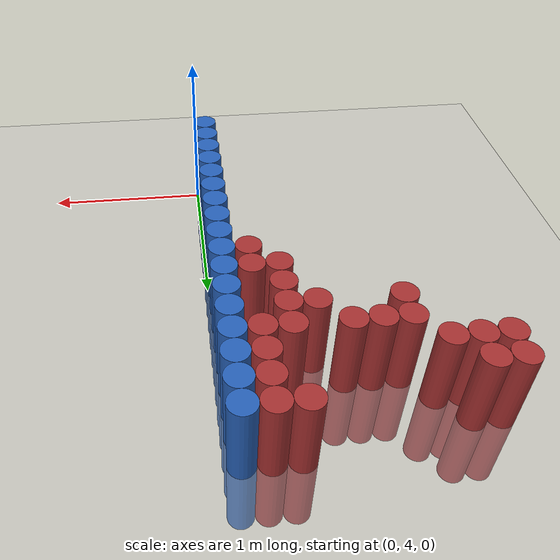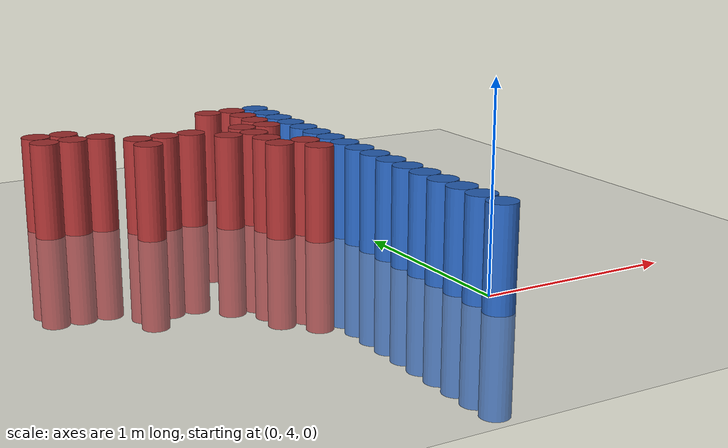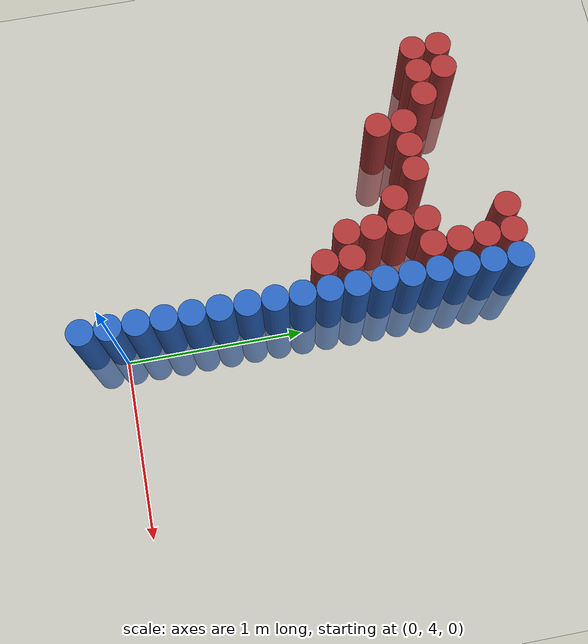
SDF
<sdf version="1.6">
 <world name="default">
  <model name="ground_plane">
   <static>1</static>
   <link name="link">
    <collision name="collision">
     <geometry><plane><normal>0 0 1</normal><size>100 100</size></plane></geometry>
     <surface><friction><ode><mu>100</mu><mu2>50</mu2></ode></friction></surface>
    </collision>
    <visual name="visual">
     <cast_shadows>0</cast_shadows>
     <geometry><plane><normal>0 0 1</normal><size>100 100</size></plane></geometry>
     <material>
      <script><uri>file://media/materials/scripts/gazebo.material</uri><name>Gazebo/Grey</name></script>
     </material>
    </visual>
   </link>
  </model>
  <model name="unit_cylinder_78">
   <static>1</static>
   <pose>-0.075000 3.825000 0.000000 0.000000 0.000000 0.000000</pose>
   <link name="link">
    <inertial>
     <mass>1</mass>
     <inertia><ixx>0.145833</ixx><ixy>0</ixy><ixz>0</ixz><iyy>0.145833</iyy><iyz>0</iyz><izz>0.125</izz></inertia>
    </inertial>
    <collision name="collision">
     <geometry><cylinder><radius>0.075000</radius><length>1</length></cylinder></geometry>
    </collision>
    <visual name="visual">
     <geometry><cylinder><radius>0.075000</radius><length>1</length></cylinder></geometry>
     <material>
      <ambient>0.152000 0.379000 0.720000 1</ambient>
      <diffuse>0.152000 0.379000 0.720000 1</diffuse>
     </material>
     <material>
      <script><name>Gazebo/Grey</name><uri>file://media/materials/scripts/gazebo.material</uri></script>
     </material>
    </visual>
    <sensor name="sensor_contact" type="contact"><contact><collision>collision</collision></contact></sensor>
   </link>
   <plugin filename="gz-sim-touchplugin-system" name="gz::sim::systems::TouchPlugin">
    <target>robot</target>
    <namespace>robot</namespace>
    <time>0.001</time>
    <enabled>true</enabled>
   </plugin>
  </model>
  <model name="unit_cylinder_80">
   <static>1</static>
   <pose>-0.075000 3.975000 0.000000 0.000000 0.000000 0.000000</pose>
   <link name="link">
    <inertial>
     <mass>1</mass>
     <inertia><ixx>0.145833</ixx><ixy>0</ixy><ixz>0</ixz><iyy>0.145833</iyy><iyz>0</iyz><izz>0.125</izz></inertia>
    </inertial>
    <collision name="collision">
     <geometry><cylinder><radius>0.075000</radius><length>1</length></cylinder></geometry>
    </collision>
    <visual name="visual">
     <geometry><cylinder><radius>0.075000</radius><length>1</length></cylinder></geometry>
     <material>
      <ambient>0.152000 0.379000 0.720000 1</ambient>
      <diffuse>0.152000 0.379000 0.720000 1</diffuse>
     </material>
     <material>
      <script><name>Gazebo/Grey</name><uri>file://media/materials/scripts/gazebo.material</uri></script>
     </material>
    </visual>
    <sensor name="sensor_contact" type="contact"><contact><collision>collision</collision></contact></sensor>
   </link>
   <plugin filename="gz-sim-touchplugin-system" name="gz::sim::systems::TouchPlugin">
    <target>robot</target>
    <namespace>robot</namespace>
    <time>0.001</time>
    <enabled>true</enabled>
   </plugin>
  </model>
  <model name="unit_cylinder_82">
   <static>1</static>
   <pose>-0.075000 4.125000 0.000000 0.000000 0.000000 0.000000</pose>
   <link name="link">
    <inertial>
     <mass>1</mass>
     <inertia><ixx>0.145833</ixx><ixy>0</ixy><ixz>0</ixz><iyy>0.145833</iyy><iyz>0</iyz><izz>0.125</izz></inertia>
    </inertial>
    <collision name="collision">
     <geometry><cylinder><radius>0.075000</radius><length>1</length></cylinder></geometry>
    </collision>
    <visual name="visual">
     <geometry><cylinder><radius>0.075000</radius><length>1</length></cylinder></geometry>
     <material>
      <ambient>0.152000 0.379000 0.720000 1</ambient>
      <diffuse>0.152000 0.379000 0.720000 1</diffuse>
     </material>
     <material>
      <script><name>Gazebo/Grey</name><uri>file://media/materials/scripts/gazebo.material</uri></script>
     </material>
    </visual>
    <sensor name="sensor_contact" type="contact"><contact><collision>collision</collision></contact></sensor>
   </link>
   <plugin filename="gz-sim-touchplugin-system" name="gz::sim::systems::TouchPlugin">
    <target>robot</target>
    <namespace>robot</namespace>
    <time>0.001</time>
    <enabled>true</enabled>
   </plugin>
  </model>
  <model name="unit_cylinder_84">
   <static>1</static>
   <pose>-0.075000 4.275000 0.000000 0.000000 0.000000 0.000000</pose>
   <link name="link">
    <inertial>
     <mass>1</mass>
     <inertia><ixx>0.145833</ixx><ixy>0</ixy><ixz>0</ixz><iyy>0.145833</iyy><iyz>0</iyz><izz>0.125</izz></inertia>
    </inertial>
    <collision name="collision">
     <geometry><cylinder><radius>0.075000</radius><length>1</length></cylinder></geometry>
    </collision>
    <visual name="visual">
     <geometry><cylinder><radius>0.075000</radius><length>1</length></cylinder></geometry>
     <material>
      <ambient>0.152000 0.379000 0.720000 1</ambient>
      <diffuse>0.152000 0.379000 0.720000 1</diffuse>
     </material>
     <material>
      <script><name>Gazebo/Grey</name><uri>file://media/materials/scripts/gazebo.material</uri></script>
     </material>
    </visual>
    <sensor name="sensor_contact" type="contact"><contact><collision>collision</collision></contact></sensor>
   </link>
   <plugin filename="gz-sim-touchplugin-system" name="gz::sim::systems::TouchPlugin">
    <target>robot</target>
    <namespace>robot</namespace>
    <time>0.001</time>
    <enabled>true</enabled>
   </plugin>
  </model>
  <model name="unit_cylinder_86">
   <static>1</static>
   <pose>-0.075000 4.425000 0.000000 0.000000 0.000000 0.000000</pose>
   <link name="link">
    <inertial>
     <mass>1</mass>
     <inertia><ixx>0.145833</ixx><ixy>0</ixy><ixz>0</ixz><iyy>0.145833</iyy><iyz>0</iyz><izz>0.125</izz></inertia>
    </inertial>
    <collision name="collision">
     <geometry><cylinder><radius>0.075000</radius><length>1</length></cylinder></geometry>
    </collision>
    <visual name="visual">
     <geometry><cylinder><radius>0.075000</radius><length>1</length></cylinder></geometry>
     <material>
      <ambient>0.152000 0.379000 0.720000 1</ambient>
      <diffuse>0.152000 0.379000 0.720000 1</diffuse>
     </material>
     <material>
      <script><name>Gazebo/Grey</name><uri>file://media/materials/scripts/gazebo.material</uri></script>
     </material>
    </visual>
    <sensor name="sensor_contact" type="contact"><contact><collision>collision</collision></contact></sensor>
   </link>
   <plugin filename="gz-sim-touchplugin-system" name="gz::sim::systems::TouchPlugin">
    <target>robot</target>
    <namespace>robot</namespace>
    <time>0.001</time>
    <enabled>true</enabled>
   </plugin>
  </model>
  <model name="unit_cylinder_88">
   <static>1</static>
   <pose>-0.075000 4.575000 0.000000 0.000000 0.000000 0.000000</pose>
   <link name="link">
    <inertial>
     <mass>1</mass>
     <inertia><ixx>0.145833</ixx><ixy>0</ixy><ixz>0</ixz><iyy>0.145833</iyy><iyz>0</iyz><izz>0.125</izz></inertia>
    </inertial>
    <collision name="collision">
     <geometry><cylinder><radius>0.075000</radius><length>1</length></cylinder></geometry>
    </collision>
    <visual name="visual">
     <geometry><cylinder><radius>0.075000</radius><length>1</length></cylinder></geometry>
     <material>
      <ambient>0.152000 0.379000 0.720000 1</ambient>
      <diffuse>0.152000 0.379000 0.720000 1</diffuse>
     </material>
     <material>
      <script><name>Gazebo/Grey</name><uri>file://media/materials/scripts/gazebo.material</uri></script>
     </material>
    </visual>
    <sensor name="sensor_contact" type="contact"><contact><collision>collision</collision></contact></sensor>
   </link>
   <plugin filename="gz-sim-touchplugin-system" name="gz::sim::systems::TouchPlugin">
    <target>robot</target>
    <namespace>robot</namespace>
    <time>0.001</time>
    <enabled>true</enabled>
   </plugin>
  </model>
  <model name="unit_cylinder_90">
   <static>1</static>
   <pose>-0.075000 4.725000 0.000000 0.000000 0.000000 0.000000</pose>
   <link name="link">
    <inertial>
     <mass>1</mass>
     <inertia><ixx>0.145833</ixx><ixy>0</ixy><ixz>0</ixz><iyy>0.145833</iyy><iyz>0</iyz><izz>0.125</izz></inertia>
    </inertial>
    <collision name="collision">
     <geometry><cylinder><radius>0.075000</radius><length>1</length></cylinder></geometry>
    </collision>
    <visual name="visual">
     <geometry><cylinder><radius>0.075000</radius><length>1</length></cylinder></geometry>
     <material>
      <ambient>0.152000 0.379000 0.720000 1</ambient>
      <diffuse>0.152000 0.379000 0.720000 1</diffuse>
     </material>
     <material>
      <script><name>Gazebo/Grey</name><uri>file://media/materials/scripts/gazebo.material</uri></script>
     </material>
    </visual>
    <sensor name="sensor_contact" type="contact"><contact><collision>collision</collision></contact></sensor>
   </link>
   <plugin filename="gz-sim-touchplugin-system" name="gz::sim::systems::TouchPlugin">
    <target>robot</target>
    <namespace>robot</namespace>
    <time>0.001</time>
    <enabled>true</enabled>
   </plugin>
  </model>
  <model name="unit_cylinder_92">
   <static>1</static>
   <pose>-0.075000 4.875000 0.000000 0.000000 0.000000 0.000000</pose>
   <link name="link">
    <inertial>
     <mass>1</mass>
     <inertia><ixx>0.145833</ixx><ixy>0</ixy><ixz>0</ixz><iyy>0.145833</iyy><iyz>0</iyz><izz>0.125</izz></inertia>
    </inertial>
    <collision name="collision">
     <geometry><cylinder><radius>0.075000</radius><length>1</length></cylinder></geometry>
    </collision>
    <visual name="visual">
     <geometry><cylinder><radius>0.075000</radius><length>1</length></cylinder></geometry>
     <material>
      <ambient>0.152000 0.379000 0.720000 1</ambient>
      <diffuse>0.152000 0.379000 0.720000 1</diffuse>
     </material>
     <material>
      <script><name>Gazebo/Grey</name><uri>file://media/materials/scripts/gazebo.material</uri></script>
     </material>
    </visual>
    <sensor name="sensor_contact" type="contact"><contact><collision>collision</collision></contact></sensor>
   </link>
   <plugin filename="gz-sim-touchplugin-system" name="gz::sim::systems::TouchPlugin">
    <target>robot</target>
    <namespace>robot</namespace>
    <time>0.001</time>
    <enabled>true</enabled>
   </plugin>
  </model>
  <model name="unit_cylinder_94">
   <static>1</static>
   <pose>-0.075000 5.025000 0.000000 0.000000 0.000000 0.000000</pose>
   <link name="link">
    <inertial>
     <mass>1</mass>
     <inertia><ixx>0.145833</ixx><ixy>0</ixy><ixz>0</ixz><iyy>0.145833</iyy><iyz>0</iyz><izz>0.125</izz></inertia>
    </inertial>
    <collision name="collision">
     <geometry><cylinder><radius>0.075000</radius><length>1</length></cylinder></geometry>
    </collision>
    <visual name="visual">
     <geometry><cylinder><radius>0.075000</radius><length>1</length></cylinder></geometry>
     <material>
      <ambient>0.152000 0.379000 0.720000 1</ambient>
      <diffuse>0.152000 0.379000 0.720000 1</diffuse>
     </material>
     <material>
      <script><name>Gazebo/Grey</name><uri>file://media/materials/scripts/gazebo.material</uri></script>
     </material>
    </visual>
    <sensor name="sensor_contact" type="contact"><contact><collision>collision</collision></contact></sensor>
   </link>
   <plugin filename="gz-sim-touchplugin-system" name="gz::sim::systems::TouchPlugin">
    <target>robot</target>
    <namespace>robot</namespace>
    <time>0.001</time>
    <enabled>true</enabled>
   </plugin>
  </model>
  <model name="unit_cylinder_216">
   <static>1</static>
   <pose>-1.425000 5.925000 0.000000 0.000000 0.000000 0.000000</pose>
   <link name="link">
    <inertial>
     <mass>1</mass>
     <inertia><ixx>0.145833</ixx><ixy>0</ixy><ixz>0</ixz><iyy>0.145833</iyy><iyz>0</iyz><izz>0.125</izz></inertia>
    </inertial>
    <collision name="collision">
     <geometry><cylinder><radius>0.075000</radius><length>1</length></cylinder></geometry>
    </collision>
    <visual name="visual">
     <geometry><cylinder><radius>0.075000</radius><length>1</length></cylinder></geometry>
     <material>
      <ambient>0.648000 0.192000 0.192000 1</ambient>
      <diffuse>0.648000 0.192000 0.192000 1</diffuse>
     </material>
     <material>
      <script><name>Gazebo/Grey</name><uri>file://media/materials/scripts/gazebo.material</uri></script>
     </material>
    </visual>
    <sensor name="sensor_contact" type="contact"><contact><collision>collision</collision></contact></sensor>
   </link>
   <plugin filename="gz-sim-touchplugin-system" name="gz::sim::systems::TouchPlugin">
    <target>robot</target>
    <namespace>robot</namespace>
    <time>0.001</time>
    <enabled>true</enabled>
   </plugin>
  </model>
  <model name="unit_cylinder_217">
   <static>1</static>
   <pose>-1.425000 6.075000 0.000000 0.000000 0.000000 0.000000</pose>
   <link name="link">
    <inertial>
     <mass>1</mass>
     <inertia><ixx>0.145833</ixx><ixy>0</ixy><ixz>0</ixz><iyy>0.145833</iyy><iyz>0</iyz><izz>0.125</izz></inertia>
    </inertial>
    <collision name="collision">
     <geometry><cylinder><radius>0.075000</radius><length>1</length></cylinder></geometry>
    </collision>
    <visual name="visual">
     <geometry><cylinder><radius>0.075000</radius><length>1</length></cylinder></geometry>
     <material>
      <ambient>0.648000 0.192000 0.192000 1</ambient>
      <diffuse>0.648000 0.192000 0.192000 1</diffuse>
     </material>
     <material>
      <script><name>Gazebo/Grey</name><uri>file://media/materials/scripts/gazebo.material</uri></script>
     </material>
    </visual>
    <sensor name="sensor_contact" type="contact"><contact><collision>collision</collision></contact></sensor>
   </link>
   <plugin filename="gz-sim-touchplugin-system" name="gz::sim::systems::TouchPlugin">
    <target>robot</target>
    <namespace>robot</namespace>
    <time>0.001</time>
    <enabled>true</enabled>
   </plugin>
  </model>
  <model name="unit_cylinder_226">
   <static>1</static>
   <pose>-1.275000 5.925000 0.000000 0.000000 0.000000 0.000000</pose>
   <link name="link">
    <inertial>
     <mass>1</mass>
     <inertia><ixx>0.145833</ixx><ixy>0</ixy><ixz>0</ixz><iyy>0.145833</iyy><iyz>0</iyz><izz>0.125</izz></inertia>
    </inertial>
    <collision name="collision">
     <geometry><cylinder><radius>0.075000</radius><length>1</length></cylinder></geometry>
    </collision>
    <visual name="visual">
     <geometry><cylinder><radius>0.075000</radius><length>1</length></cylinder></geometry>
     <material>
      <ambient>0.648000 0.192000 0.192000 1</ambient>
      <diffuse>0.648000 0.192000 0.192000 1</diffuse>
     </material>
     <material>
      <script><name>Gazebo/Grey</name><uri>file://media/materials/scripts/gazebo.material</uri></script>
     </material>
    </visual>
    <sensor name="sensor_contact" type="contact"><contact><collision>collision</collision></contact></sensor>
   </link>
   <plugin filename="gz-sim-touchplugin-system" name="gz::sim::systems::TouchPlugin">
    <target>robot</target>
    <namespace>robot</namespace>
    <time>0.001</time>
    <enabled>true</enabled>
   </plugin>
  </model>
  <model name="unit_cylinder_227">
   <static>1</static>
   <pose>-1.275000 6.075000 0.000000 0.000000 0.000000 0.000000</pose>
   <link name="link">
    <inertial>
     <mass>1</mass>
     <inertia><ixx>0.145833</ixx><ixy>0</ixy><ixz>0</ixz><iyy>0.145833</iyy><iyz>0</iyz><izz>0.125</izz></inertia>
    </inertial>
    <collision name="collision">
     <geometry><cylinder><radius>0.075000</radius><length>1</length></cylinder></geometry>
    </collision>
    <visual name="visual">
     <geometry><cylinder><radius>0.075000</radius><length>1</length></cylinder></geometry>
     <material>
      <ambient>0.648000 0.192000 0.192000 1</ambient>
      <diffuse>0.648000 0.192000 0.192000 1</diffuse>
     </material>
     <material>
      <script><name>Gazebo/Grey</name><uri>file://media/materials/scripts/gazebo.material</uri></script>
     </material>
    </visual>
    <sensor name="sensor_contact" type="contact"><contact><collision>collision</collision></contact></sensor>
   </link>
   <plugin filename="gz-sim-touchplugin-system" name="gz::sim::systems::TouchPlugin">
    <target>robot</target>
    <namespace>robot</namespace>
    <time>0.001</time>
    <enabled>true</enabled>
   </plugin>
  </model>
  <model name="unit_cylinder_238">
   <static>1</static>
   <pose>-1.125000 5.925000 0.000000 0.000000 0.000000 0.000000</pose>
   <link name="link">
    <inertial>
     <mass>1</mass>
     <inertia><ixx>0.145833</ixx><ixy>0</ixy><ixz>0</ixz><iyy>0.145833</iyy><iyz>0</iyz><izz>0.125</izz></inertia>
    </inertial>
    <collision name="collision">
     <geometry><cylinder><radius>0.075000</radius><length>1</length></cylinder></geometry>
    </collision>
    <visual name="visual">
     <geometry><cylinder><radius>0.075000</radius><length>1</length></cylinder></geometry>
     <material>
      <ambient>0.648000 0.192000 0.192000 1</ambient>
      <diffuse>0.648000 0.192000 0.192000 1</diffuse>
     </material>
     <material>
      <script><name>Gazebo/Grey</name><uri>file://media/materials/scripts/gazebo.material</uri></script>
     </material>
    </visual>
    <sensor name="sensor_contact" type="contact"><contact><collision>collision</collision></contact></sensor>
   </link>
   <plugin filename="gz-sim-touchplugin-system" name="gz::sim::systems::TouchPlugin">
    <target>robot</target>
    <namespace>robot</namespace>
    <time>0.001</time>
    <enabled>true</enabled>
   </plugin>
  </model>
  <model name="unit_cylinder_248">
   <static>1</static>
   <pose>-0.975000 5.625000 0.000000 0.000000 0.000000 0.000000</pose>
   <link name="link">
    <inertial>
     <mass>1</mass>
     <inertia><ixx>0.145833</ixx><ixy>0</ixy><ixz>0</ixz><iyy>0.145833</iyy><iyz>0</iyz><izz>0.125</izz></inertia>
    </inertial>
    <collision name="collision">
     <geometry><cylinder><radius>0.075000</radius><length>1</length></cylinder></geometry>
    </collision>
    <visual name="visual">
     <geometry><cylinder><radius>0.075000</radius><length>1</length></cylinder></geometry>
     <material>
      <ambient>0.648000 0.192000 0.192000 1</ambient>
      <diffuse>0.648000 0.192000 0.192000 1</diffuse>
     </material>
     <material>
      <script><name>Gazebo/Grey</name><uri>file://media/materials/scripts/gazebo.material</uri></script>
     </material>
    </visual>
    <sensor name="sensor_contact" type="contact"><contact><collision>collision</collision></contact></sensor>
   </link>
   <plugin filename="gz-sim-touchplugin-system" name="gz::sim::systems::TouchPlugin">
    <target>robot</target>
    <namespace>robot</namespace>
    <time>0.001</time>
    <enabled>true</enabled>
   </plugin>
  </model>
  <model name="unit_cylinder_249">
   <static>1</static>
   <pose>-0.975000 5.775000 0.000000 0.000000 0.000000 0.000000</pose>
   <link name="link">
    <inertial>
     <mass>1</mass>
     <inertia><ixx>0.145833</ixx><ixy>0</ixy><ixz>0</ixz><iyy>0.145833</iyy><iyz>0</iyz><izz>0.125</izz></inertia>
    </inertial>
    <collision name="collision">
     <geometry><cylinder><radius>0.075000</radius><length>1</length></cylinder></geometry>
    </collision>
    <visual name="visual">
     <geometry><cylinder><radius>0.075000</radius><length>1</length></cylinder></geometry>
     <material>
      <ambient>0.648000 0.192000 0.192000 1</ambient>
      <diffuse>0.648000 0.192000 0.192000 1</diffuse>
     </material>
     <material>
      <script><name>Gazebo/Grey</name><uri>file://media/materials/scripts/gazebo.material</uri></script>
     </material>
    </visual>
    <sensor name="sensor_contact" type="contact"><contact><collision>collision</collision></contact></sensor>
   </link>
   <plugin filename="gz-sim-touchplugin-system" name="gz::sim::systems::TouchPlugin">
    <target>robot</target>
    <namespace>robot</namespace>
    <time>0.001</time>
    <enabled>true</enabled>
   </plugin>
  </model>
  <model name="unit_cylinder_257">
   <static>1</static>
   <pose>-0.825000 5.775000 0.000000 0.000000 0.000000 0.000000</pose>
   <link name="link">
    <inertial>
     <mass>1</mass>
     <inertia><ixx>0.145833</ixx><ixy>0</ixy><ixz>0</ixz><iyy>0.145833</iyy><iyz>0</iyz><izz>0.125</izz></inertia>
    </inertial>
    <collision name="collision">
     <geometry><cylinder><radius>0.075000</radius><length>1</length></cylinder></geometry>
    </collision>
    <visual name="visual">
     <geometry><cylinder><radius>0.075000</radius><length>1</length></cylinder></geometry>
     <material>
      <ambient>0.648000 0.192000 0.192000 1</ambient>
      <diffuse>0.648000 0.192000 0.192000 1</diffuse>
     </material>
     <material>
      <script><name>Gazebo/Grey</name><uri>file://media/materials/scripts/gazebo.material</uri></script>
     </material>
    </visual>
    <sensor name="sensor_contact" type="contact"><contact><collision>collision</collision></contact></sensor>
   </link>
   <plugin filename="gz-sim-touchplugin-system" name="gz::sim::systems::TouchPlugin">
    <target>robot</target>
    <namespace>robot</namespace>
    <time>0.001</time>
    <enabled>true</enabled>
   </plugin>
  </model>
  <model name="unit_cylinder_264">
   <static>1</static>
   <pose>-0.675000 5.775000 0.000000 0.000000 0.000000 0.000000</pose>
   <link name="link">
    <inertial>
     <mass>1</mass>
     <inertia><ixx>0.145833</ixx><ixy>0</ixy><ixz>0</ixz><iyy>0.145833</iyy><iyz>0</iyz><izz>0.125</izz></inertia>
    </inertial>
    <collision name="collision">
     <geometry><cylinder><radius>0.075000</radius><length>1</length></cylinder></geometry>
    </collision>
    <visual name="visual">
     <geometry><cylinder><radius>0.075000</radius><length>1</length></cylinder></geometry>
     <material>
      <ambient>0.648000 0.192000 0.192000 1</ambient>
      <diffuse>0.648000 0.192000 0.192000 1</diffuse>
     </material>
     <material>
      <script><name>Gazebo/Grey</name><uri>file://media/materials/scripts/gazebo.material</uri></script>
     </material>
    </visual>
    <sensor name="sensor_contact" type="contact"><contact><collision>collision</collision></contact></sensor>
   </link>
   <plugin filename="gz-sim-touchplugin-system" name="gz::sim::systems::TouchPlugin">
    <target>robot</target>
    <namespace>robot</namespace>
    <time>0.001</time>
    <enabled>true</enabled>
   </plugin>
  </model>
  <model name="unit_cylinder_270">
   <static>1</static>
   <pose>-0.525000 5.625000 0.000000 0.000000 0.000000 0.000000</pose>
   <link name="link">
    <inertial>
     <mass>1</mass>
     <inertia><ixx>0.145833</ixx><ixy>0</ixy><ixz>0</ixz><iyy>0.145833</iyy><iyz>0</iyz><izz>0.125</izz></inertia>
    </inertial>
    <collision name="collision">
     <geometry><cylinder><radius>0.075000</radius><length>1</length></cylinder></geometry>
    </collision>
    <visual name="visual">
     <geometry><cylinder><radius>0.075000</radius><length>1</length></cylinder></geometry>
     <material>
      <ambient>0.648000 0.192000 0.192000 1</ambient>
      <diffuse>0.648000 0.192000 0.192000 1</diffuse>
     </material>
     <material>
      <script><name>Gazebo/Grey</name><uri>file://media/materials/scripts/gazebo.material</uri></script>
     </material>
    </visual>
    <sensor name="sensor_contact" type="contact"><contact><collision>collision</collision></contact></sensor>
   </link>
   <plugin filename="gz-sim-touchplugin-system" name="gz::sim::systems::TouchPlugin">
    <target>robot</target>
    <namespace>robot</namespace>
    <time>0.001</time>
    <enabled>true</enabled>
   </plugin>
  </model>
  <model name="unit_cylinder_276">
   <static>1</static>
   <pose>-0.375000 5.325000 0.000000 0.000000 0.000000 0.000000</pose>
   <link name="link">
    <inertial>
     <mass>1</mass>
     <inertia><ixx>0.145833</ixx><ixy>0</ixy><ixz>0</ixz><iyy>0.145833</iyy><iyz>0</iyz><izz>0.125</izz></inertia>
    </inertial>
    <collision name="collision">
     <geometry><cylinder><radius>0.075000</radius><length>1</length></cylinder></geometry>
    </collision>
    <visual name="visual">
     <geometry><cylinder><radius>0.075000</radius><length>1</length></cylinder></geometry>
     <material>
      <ambient>0.648000 0.192000 0.192000 1</ambient>
      <diffuse>0.648000 0.192000 0.192000 1</diffuse>
     </material>
     <material>
      <script><name>Gazebo/Grey</name><uri>file://media/materials/scripts/gazebo.material</uri></script>
     </material>
    </visual>
    <sensor name="sensor_contact" type="contact"><contact><collision>collision</collision></contact></sensor>
   </link>
   <plugin filename="gz-sim-touchplugin-system" name="gz::sim::systems::TouchPlugin">
    <target>robot</target>
    <namespace>robot</namespace>
    <time>0.001</time>
    <enabled>true</enabled>
   </plugin>
  </model>
  <model name="unit_cylinder_277">
   <static>1</static>
   <pose>-0.375000 5.475000 0.000000 0.000000 0.000000 0.000000</pose>
   <link name="link">
    <inertial>
     <mass>1</mass>
     <inertia><ixx>0.145833</ixx><ixy>0</ixy><ixz>0</ixz><iyy>0.145833</iyy><iyz>0</iyz><izz>0.125</izz></inertia>
    </inertial>
    <collision name="collision">
     <geometry><cylinder><radius>0.075000</radius><length>1</length></cylinder></geometry>
    </collision>
    <visual name="visual">
     <geometry><cylinder><radius>0.075000</radius><length>1</length></cylinder></geometry>
     <material>
      <ambient>0.648000 0.192000 0.192000 1</ambient>
      <diffuse>0.648000 0.192000 0.192000 1</diffuse>
     </material>
     <material>
      <script><name>Gazebo/Grey</name><uri>file://media/materials/scripts/gazebo.material</uri></script>
     </material>
    </visual>
    <sensor name="sensor_contact" type="contact"><contact><collision>collision</collision></contact></sensor>
   </link>
   <plugin filename="gz-sim-touchplugin-system" name="gz::sim::systems::TouchPlugin">
    <target>robot</target>
    <namespace>robot</namespace>
    <time>0.001</time>
    <enabled>true</enabled>
   </plugin>
  </model>
  <model name="unit_cylinder_278">
   <static>1</static>
   <pose>-0.375000 5.625000 0.000000 0.000000 0.000000 0.000000</pose>
   <link name="link">
    <inertial>
     <mass>1</mass>
     <inertia><ixx>0.145833</ixx><ixy>0</ixy><ixz>0</ixz><iyy>0.145833</iyy><iyz>0</iyz><izz>0.125</izz></inertia>
    </inertial>
    <collision name="collision">
     <geometry><cylinder><radius>0.075000</radius><length>1</length></cylinder></geometry>
    </collision>
    <visual name="visual">
     <geometry><cylinder><radius>0.075000</radius><length>1</length></cylinder></geometry>
     <material>
      <ambient>0.648000 0.192000 0.192000 1</ambient>
      <diffuse>0.648000 0.192000 0.192000 1</diffuse>
     </material>
     <material>
      <script><name>Gazebo/Grey</name><uri>file://media/materials/scripts/gazebo.material</uri></script>
     </material>
    </visual>
    <sensor name="sensor_contact" type="contact"><contact><collision>collision</collision></contact></sensor>
   </link>
   <plugin filename="gz-sim-touchplugin-system" name="gz::sim::systems::TouchPlugin">
    <target>robot</target>
    <namespace>robot</namespace>
    <time>0.001</time>
    <enabled>true</enabled>
   </plugin>
  </model>
  <model name="unit_cylinder_279">
   <static>1</static>
   <pose>-0.375000 5.775000 0.000000 0.000000 0.000000 0.000000</pose>
   <link name="link">
    <inertial>
     <mass>1</mass>
     <inertia><ixx>0.145833</ixx><ixy>0</ixy><ixz>0</ixz><iyy>0.145833</iyy><iyz>0</iyz><izz>0.125</izz></inertia>
    </inertial>
    <collision name="collision">
     <geometry><cylinder><radius>0.075000</radius><length>1</length></cylinder></geometry>
    </collision>
    <visual name="visual">
     <geometry><cylinder><radius>0.075000</radius><length>1</length></cylinder></geometry>
     <material>
      <ambient>0.648000 0.192000 0.192000 1</ambient>
      <diffuse>0.648000 0.192000 0.192000 1</diffuse>
     </material>
     <material>
      <script><name>Gazebo/Grey</name><uri>file://media/materials/scripts/gazebo.material</uri></script>
     </material>
    </visual>
    <sensor name="sensor_contact" type="contact"><contact><collision>collision</collision></contact></sensor>
   </link>
   <plugin filename="gz-sim-touchplugin-system" name="gz::sim::systems::TouchPlugin">
    <target>robot</target>
    <namespace>robot</namespace>
    <time>0.001</time>
    <enabled>true</enabled>
   </plugin>
  </model>
  <model name="unit_cylinder_280">
   <static>1</static>
   <pose>-0.375000 6.225000 0.000000 0.000000 0.000000 0.000000</pose>
   <link name="link">
    <inertial>
     <mass>1</mass>
     <inertia><ixx>0.145833</ixx><ixy>0</ixy><ixz>0</ixz><iyy>0.145833</iyy><iyz>0</iyz><izz>0.125</izz></inertia>
    </inertial>
    <collision name="collision">
     <geometry><cylinder><radius>0.075000</radius><length>1</length></cylinder></geometry>
    </collision>
    <visual name="visual">
     <geometry><cylinder><radius>0.075000</radius><length>1</length></cylinder></geometry>
     <material>
      <ambient>0.648000 0.192000 0.192000 1</ambient>
      <diffuse>0.648000 0.192000 0.192000 1</diffuse>
     </material>
     <material>
      <script><name>Gazebo/Grey</name><uri>file://media/materials/scripts/gazebo.material</uri></script>
     </material>
    </visual>
    <sensor name="sensor_contact" type="contact"><contact><collision>collision</collision></contact></sensor>
   </link>
   <plugin filename="gz-sim-touchplugin-system" name="gz::sim::systems::TouchPlugin">
    <target>robot</target>
    <namespace>robot</namespace>
    <time>0.001</time>
    <enabled>true</enabled>
   </plugin>
  </model>
  <model name="unit_cylinder_289">
   <static>1</static>
   <pose>-0.225000 5.175000 0.000000 0.000000 0.000000 0.000000</pose>
   <link name="link">
    <inertial>
     <mass>1</mass>
     <inertia><ixx>0.145833</ixx><ixy>0</ixy><ixz>0</ixz><iyy>0.145833</iyy><iyz>0</iyz><izz>0.125</izz></inertia>
    </inertial>
    <collision name="collision">
     <geometry><cylinder><radius>0.075000</radius><length>1</length></cylinder></geometry>
    </collision>
    <visual name="visual">
     <geometry><cylinder><radius>0.075000</radius><length>1</length></cylinder></geometry>
     <material>
      <ambient>0.648000 0.192000 0.192000 1</ambient>
      <diffuse>0.648000 0.192000 0.192000 1</diffuse>
     </material>
     <material>
      <script><name>Gazebo/Grey</name><uri>file://media/materials/scripts/gazebo.material</uri></script>
     </material>
    </visual>
    <sensor name="sensor_contact" type="contact"><contact><collision>collision</collision></contact></sensor>
   </link>
   <plugin filename="gz-sim-touchplugin-system" name="gz::sim::systems::TouchPlugin">
    <target>robot</target>
    <namespace>robot</namespace>
    <time>0.001</time>
    <enabled>true</enabled>
   </plugin>
  </model>
  <model name="unit_cylinder_290">
   <static>1</static>
   <pose>-0.225000 5.325000 0.000000 0.000000 0.000000 0.000000</pose>
   <link name="link">
    <inertial>
     <mass>1</mass>
     <inertia><ixx>0.145833</ixx><ixy>0</ixy><ixz>0</ixz><iyy>0.145833</iyy><iyz>0</iyz><izz>0.125</izz></inertia>
    </inertial>
    <collision name="collision">
     <geometry><cylinder><radius>0.075000</radius><length>1</length></cylinder></geometry>
    </collision>
    <visual name="visual">
     <geometry><cylinder><radius>0.075000</radius><length>1</length></cylinder></geometry>
     <material>
      <ambient>0.648000 0.192000 0.192000 1</ambient>
      <diffuse>0.648000 0.192000 0.192000 1</diffuse>
     </material>
     <material>
      <script><name>Gazebo/Grey</name><uri>file://media/materials/scripts/gazebo.material</uri></script>
     </material>
    </visual>
    <sensor name="sensor_contact" type="contact"><contact><collision>collision</collision></contact></sensor>
   </link>
   <plugin filename="gz-sim-touchplugin-system" name="gz::sim::systems::TouchPlugin">
    <target>robot</target>
    <namespace>robot</namespace>
    <time>0.001</time>
    <enabled>true</enabled>
   </plugin>
  </model>
  <model name="unit_cylinder_291">
   <static>1</static>
   <pose>-0.225000 5.775000 0.000000 0.000000 0.000000 0.000000</pose>
   <link name="link">
    <inertial>
     <mass>1</mass>
     <inertia><ixx>0.145833</ixx><ixy>0</ixy><ixz>0</ixz><iyy>0.145833</iyy><iyz>0</iyz><izz>0.125</izz></inertia>
    </inertial>
    <collision name="collision">
     <geometry><cylinder><radius>0.075000</radius><length>1</length></cylinder></geometry>
    </collision>
    <visual name="visual">
     <geometry><cylinder><radius>0.075000</radius><length>1</length></cylinder></geometry>
     <material>
      <ambient>0.648000 0.192000 0.192000 1</ambient>
      <diffuse>0.648000 0.192000 0.192000 1</diffuse>
     </material>
     <material>
      <script><name>Gazebo/Grey</name><uri>file://media/materials/scripts/gazebo.material</uri></script>
     </material>
    </visual>
    <sensor name="sensor_contact" type="contact"><contact><collision>collision</collision></contact></sensor>
   </link>
   <plugin filename="gz-sim-touchplugin-system" name="gz::sim::systems::TouchPlugin">
    <target>robot</target>
    <namespace>robot</namespace>
    <time>0.001</time>
    <enabled>true</enabled>
   </plugin>
  </model>
  <model name="unit_cylinder_292">
   <static>1</static>
   <pose>-0.225000 5.925000 0.000000 0.000000 0.000000 0.000000</pose>
   <link name="link">
    <inertial>
     <mass>1</mass>
     <inertia><ixx>0.145833</ixx><ixy>0</ixy><ixz>0</ixz><iyy>0.145833</iyy><iyz>0</iyz><izz>0.125</izz></inertia>
    </inertial>
    <collision name="collision">
     <geometry><cylinder><radius>0.075000</radius><length>1</length></cylinder></geometry>
    </collision>
    <visual name="visual">
     <geometry><cylinder><radius>0.075000</radius><length>1</length></cylinder></geometry>
     <material>
      <ambient>0.648000 0.192000 0.192000 1</ambient>
      <diffuse>0.648000 0.192000 0.192000 1</diffuse>
     </material>
     <material>
      <script><name>Gazebo/Grey</name><uri>file://media/materials/scripts/gazebo.material</uri></script>
     </material>
    </visual>
    <sensor name="sensor_contact" type="contact"><contact><collision>collision</collision></contact></sensor>
   </link>
   <plugin filename="gz-sim-touchplugin-system" name="gz::sim::systems::TouchPlugin">
    <target>robot</target>
    <namespace>robot</namespace>
    <time>0.001</time>
    <enabled>true</enabled>
   </plugin>
  </model>
  <model name="unit_cylinder_293">
   <static>1</static>
   <pose>-0.225000 6.075000 0.000000 0.000000 0.000000 0.000000</pose>
   <link name="link">
    <inertial>
     <mass>1</mass>
     <inertia><ixx>0.145833</ixx><ixy>0</ixy><ixz>0</ixz><iyy>0.145833</iyy><iyz>0</iyz><izz>0.125</izz></inertia>
    </inertial>
    <collision name="collision">
     <geometry><cylinder><radius>0.075000</radius><length>1</length></cylinder></geometry>
    </collision>
    <visual name="visual">
     <geometry><cylinder><radius>0.075000</radius><length>1</length></cylinder></geometry>
     <material>
      <ambient>0.648000 0.192000 0.192000 1</ambient>
      <diffuse>0.648000 0.192000 0.192000 1</diffuse>
     </material>
     <material>
      <script><name>Gazebo/Grey</name><uri>file://media/materials/scripts/gazebo.material</uri></script>
     </material>
    </visual>
    <sensor name="sensor_contact" type="contact"><contact><collision>collision</collision></contact></sensor>
   </link>
   <plugin filename="gz-sim-touchplugin-system" name="gz::sim::systems::TouchPlugin">
    <target>robot</target>
    <namespace>robot</namespace>
    <time>0.001</time>
    <enabled>true</enabled>
   </plugin>
  </model>
  <model name="unit_cylinder_294">
   <static>1</static>
   <pose>-0.225000 6.225000 0.000000 0.000000 0.000000 0.000000</pose>
   <link name="link">
    <inertial>
     <mass>1</mass>
     <inertia><ixx>0.145833</ixx><ixy>0</ixy><ixz>0</ixz><iyy>0.145833</iyy><iyz>0</iyz><izz>0.125</izz></inertia>
    </inertial>
    <collision name="collision">
     <geometry><cylinder><radius>0.075000</radius><length>1</length></cylinder></geometry>
    </collision>
    <visual name="visual">
     <geometry><cylinder><radius>0.075000</radius><length>1</length></cylinder></geometry>
     <material>
      <ambient>0.648000 0.192000 0.192000 1</ambient>
      <diffuse>0.648000 0.192000 0.192000 1</diffuse>
     </material>
     <material>
      <script><name>Gazebo/Grey</name><uri>file://media/materials/scripts/gazebo.material</uri></script>
     </material>
    </visual>
    <sensor name="sensor_contact" type="contact"><contact><collision>collision</collision></contact></sensor>
   </link>
   <plugin filename="gz-sim-touchplugin-system" name="gz::sim::systems::TouchPlugin">
    <target>robot</target>
    <namespace>robot</namespace>
    <time>0.001</time>
    <enabled>true</enabled>
   </plugin>
  </model>
  <model name="unit_cylinder_317">
   <static>1</static>
   <pose>-0.075000 5.175000 0.000000 0.000000 0.000000 0.000000</pose>
   <link name="link">
    <inertial>
     <mass>1</mass>
     <inertia><ixx>0.145833</ixx><ixy>0</ixy><ixz>0</ixz><iyy>0.145833</iyy><iyz>0</iyz><izz>0.125</izz></inertia>
    </inertial>
    <collision name="collision">
     <geometry><cylinder><radius>0.075000</radius><length>1</length></cylinder></geometry>
    </collision>
    <visual name="visual">
     <geometry><cylinder><radius>0.075000</radius><length>1</length></cylinder></geometry>
     <material>
      <ambient>0.152000 0.379000 0.720000 1</ambient>
      <diffuse>0.152000 0.379000 0.720000 1</diffuse>
     </material>
     <material>
      <script><name>Gazebo/Grey</name><uri>file://media/materials/scripts/gazebo.material</uri></script>
     </material>
    </visual>
    <sensor name="sensor_contact" type="contact"><contact><collision>collision</collision></contact></sensor>
   </link>
   <plugin filename="gz-sim-touchplugin-system" name="gz::sim::systems::TouchPlugin">
    <target>robot</target>
    <namespace>robot</namespace>
    <time>0.001</time>
    <enabled>true</enabled>
   </plugin>
  </model>
  <model name="unit_cylinder_318">
   <static>1</static>
   <pose>-0.075000 5.325000 0.000000 0.000000 0.000000 0.000000</pose>
   <link name="link">
    <inertial>
     <mass>1</mass>
     <inertia><ixx>0.145833</ixx><ixy>0</ixy><ixz>0</ixz><iyy>0.145833</iyy><iyz>0</iyz><izz>0.125</izz></inertia>
    </inertial>
    <collision name="collision">
     <geometry><cylinder><radius>0.075000</radius><length>1</length></cylinder></geometry>
    </collision>
    <visual name="visual">
     <geometry><cylinder><radius>0.075000</radius><length>1</length></cylinder></geometry>
     <material>
      <ambient>0.152000 0.379000 0.720000 1</ambient>
      <diffuse>0.152000 0.379000 0.720000 1</diffuse>
     </material>
     <material>
      <script><name>Gazebo/Grey</name><uri>file://media/materials/scripts/gazebo.material</uri></script>
     </material>
    </visual>
    <sensor name="sensor_contact" type="contact"><contact><collision>collision</collision></contact></sensor>
   </link>
   <plugin filename="gz-sim-touchplugin-system" name="gz::sim::systems::TouchPlugin">
    <target>robot</target>
    <namespace>robot</namespace>
    <time>0.001</time>
    <enabled>true</enabled>
   </plugin>
  </model>
  <model name="unit_cylinder_319">
   <static>1</static>
   <pose>-0.075000 5.475000 0.000000 0.000000 0.000000 0.000000</pose>
   <link name="link">
    <inertial>
     <mass>1</mass>
     <inertia><ixx>0.145833</ixx><ixy>0</ixy><ixz>0</ixz><iyy>0.145833</iyy><iyz>0</iyz><izz>0.125</izz></inertia>
    </inertial>
    <collision name="collision">
     <geometry><cylinder><radius>0.075000</radius><length>1</length></cylinder></geometry>
    </collision>
    <visual name="visual">
     <geometry><cylinder><radius>0.075000</radius><length>1</length></cylinder></geometry>
     <material>
      <ambient>0.152000 0.379000 0.720000 1</ambient>
      <diffuse>0.152000 0.379000 0.720000 1</diffuse>
     </material>
     <material>
      <script><name>Gazebo/Grey</name><uri>file://media/materials/scripts/gazebo.material</uri></script>
     </material>
    </visual>
    <sensor name="sensor_contact" type="contact"><contact><collision>collision</collision></contact></sensor>
   </link>
   <plugin filename="gz-sim-touchplugin-system" name="gz::sim::systems::TouchPlugin">
    <target>robot</target>
    <namespace>robot</namespace>
    <time>0.001</time>
    <enabled>true</enabled>
   </plugin>
  </model>
  <model name="unit_cylinder_320">
   <static>1</static>
   <pose>-0.075000 5.625000 0.000000 0.000000 0.000000 0.000000</pose>
   <link name="link">
    <inertial>
     <mass>1</mass>
     <inertia><ixx>0.145833</ixx><ixy>0</ixy><ixz>0</ixz><iyy>0.145833</iyy><iyz>0</iyz><izz>0.125</izz></inertia>
    </inertial>
    <collision name="collision">
     <geometry><cylinder><radius>0.075000</radius><length>1</length></cylinder></geometry>
    </collision>
    <visual name="visual">
     <geometry><cylinder><radius>0.075000</radius><length>1</length></cylinder></geometry>
     <material>
      <ambient>0.152000 0.379000 0.720000 1</ambient>
      <diffuse>0.152000 0.379000 0.720000 1</diffuse>
     </material>
     <material>
      <script><name>Gazebo/Grey</name><uri>file://media/materials/scripts/gazebo.material</uri></script>
     </material>
    </visual>
    <sensor name="sensor_contact" type="contact"><contact><collision>collision</collision></contact></sensor>
   </link>
   <plugin filename="gz-sim-touchplugin-system" name="gz::sim::systems::TouchPlugin">
    <target>robot</target>
    <namespace>robot</namespace>
    <time>0.001</time>
    <enabled>true</enabled>
   </plugin>
  </model>
  <model name="unit_cylinder_321">
   <static>1</static>
   <pose>-0.075000 5.775000 0.000000 0.000000 0.000000 0.000000</pose>
   <link name="link">
    <inertial>
     <mass>1</mass>
     <inertia><ixx>0.145833</ixx><ixy>0</ixy><ixz>0</ixz><iyy>0.145833</iyy><iyz>0</iyz><izz>0.125</izz></inertia>
    </inertial>
    <collision name="collision">
     <geometry><cylinder><radius>0.075000</radius><length>1</length></cylinder></geometry>
    </collision>
    <visual name="visual">
     <geometry><cylinder><radius>0.075000</radius><length>1</length></cylinder></geometry>
     <material>
      <ambient>0.152000 0.379000 0.720000 1</ambient>
      <diffuse>0.152000 0.379000 0.720000 1</diffuse>
     </material>
     <material>
      <script><name>Gazebo/Grey</name><uri>file://media/materials/scripts/gazebo.material</uri></script>
     </material>
    </visual>
    <sensor name="sensor_contact" type="contact"><contact><collision>collision</collision></contact></sensor>
   </link>
   <plugin filename="gz-sim-touchplugin-system" name="gz::sim::systems::TouchPlugin">
    <target>robot</target>
    <namespace>robot</namespace>
    <time>0.001</time>
    <enabled>true</enabled>
   </plugin>
  </model>
  <model name="unit_cylinder_322">
   <static>1</static>
   <pose>-0.075000 5.925000 0.000000 0.000000 0.000000 0.000000</pose>
   <link name="link">
    <inertial>
     <mass>1</mass>
     <inertia><ixx>0.145833</ixx><ixy>0</ixy><ixz>0</ixz><iyy>0.145833</iyy><iyz>0</iyz><izz>0.125</izz></inertia>
    </inertial>
    <collision name="collision">
     <geometry><cylinder><radius>0.075000</radius><length>1</length></cylinder></geometry>
    </collision>
    <visual name="visual">
     <geometry><cylinder><radius>0.075000</radius><length>1</length></cylinder></geometry>
     <material>
      <ambient>0.152000 0.379000 0.720000 1</ambient>
      <diffuse>0.152000 0.379000 0.720000 1</diffuse>
     </material>
     <material>
      <script><name>Gazebo/Grey</name><uri>file://media/materials/scripts/gazebo.material</uri></script>
     </material>
    </visual>
    <sensor name="sensor_contact" type="contact"><contact><collision>collision</collision></contact></sensor>
   </link>
   <plugin filename="gz-sim-touchplugin-system" name="gz::sim::systems::TouchPlugin">
    <target>robot</target>
    <namespace>robot</namespace>
    <time>0.001</time>
    <enabled>true</enabled>
   </plugin>
  </model>
  <model name="unit_cylinder_323">
   <static>1</static>
   <pose>-0.075000 6.075000 0.000000 0.000000 0.000000 0.000000</pose>
   <link name="link">
    <inertial>
     <mass>1</mass>
     <inertia><ixx>0.145833</ixx><ixy>0</ixy><ixz>0</ixz><iyy>0.145833</iyy><iyz>0</iyz><izz>0.125</izz></inertia>
    </inertial>
    <collision name="collision">
     <geometry><cylinder><radius>0.075000</radius><length>1</length></cylinder></geometry>
    </collision>
    <visual name="visual">
     <geometry><cylinder><radius>0.075000</radius><length>1</length></cylinder></geometry>
     <material>
      <ambient>0.152000 0.379000 0.720000 1</ambient>
      <diffuse>0.152000 0.379000 0.720000 1</diffuse>
     </material>
     <material>
      <script><name>Gazebo/Grey</name><uri>file://media/materials/scripts/gazebo.material</uri></script>
     </material>
    </visual>
    <sensor name="sensor_contact" type="contact"><contact><collision>collision</collision></contact></sensor>
   </link>
   <plugin filename="gz-sim-touchplugin-system" name="gz::sim::systems::TouchPlugin">
    <target>robot</target>
    <namespace>robot</namespace>
    <time>0.001</time>
    <enabled>true</enabled>
   </plugin>
  </model>
  <model name="unit_cylinder_324">
   <static>1</static>
   <pose>-0.075000 6.225000 0.000000 0.000000 0.000000 0.000000</pose>
   <link name="link">
    <inertial>
     <mass>1</mass>
     <inertia><ixx>0.145833</ixx><ixy>0</ixy><ixz>0</ixz><iyy>0.145833</iyy><iyz>0</iyz><izz>0.125</izz></inertia>
    </inertial>
    <collision name="collision">
     <geometry><cylinder><radius>0.075000</radius><length>1</length></cylinder></geometry>
    </collision>
    <visual name="visual">
     <geometry><cylinder><radius>0.075000</radius><length>1</length></cylinder></geometry>
     <material>
      <ambient>0.152000 0.379000 0.720000 1</ambient>
      <diffuse>0.152000 0.379000 0.720000 1</diffuse>
     </material>
     <material>
      <script><name>Gazebo/Grey</name><uri>file://media/materials/scripts/gazebo.material</uri></script>
     </material>
    </visual>
    <sensor name="sensor_contact" type="contact"><contact><collision>collision</collision></contact></sensor>
   </link>
   <plugin filename="gz-sim-touchplugin-system" name="gz::sim::systems::TouchPlugin">
    <target>robot</target>
    <namespace>robot</namespace>
    <time>0.001</time>
    <enabled>true</enabled>
   </plugin>
  </model>
 </world>
</sdf>
